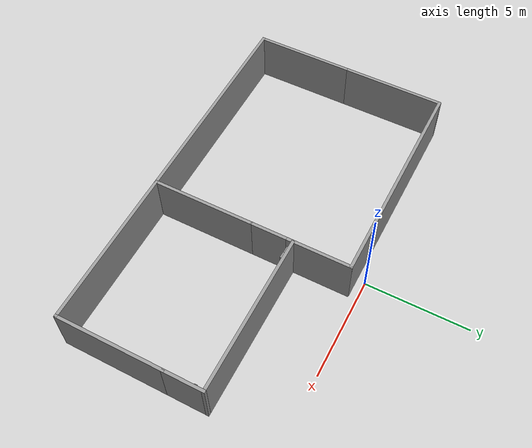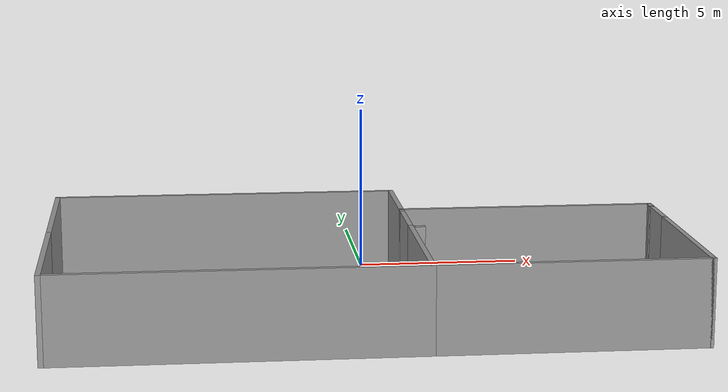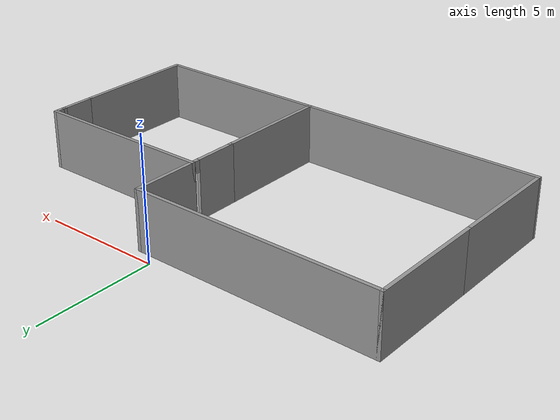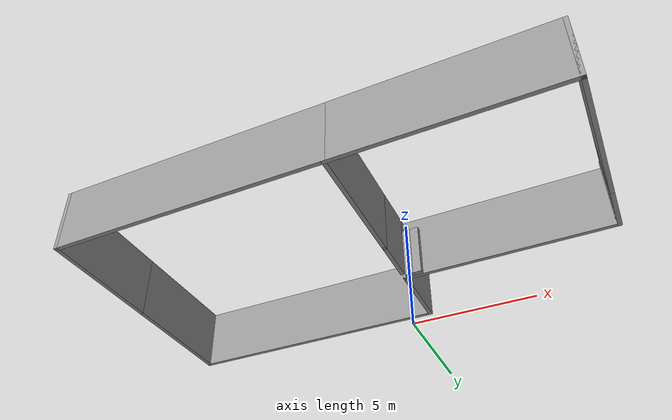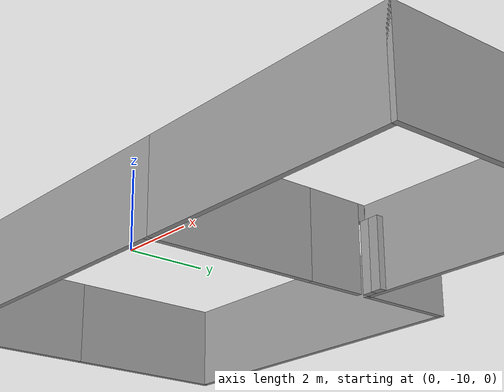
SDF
<?xml version='1.0'?>
<sdf version='1.6'>
  <model name='mfja'>
    <pose frame=''>-0.485 -5.1275 0 0 -0 0</pose>
    <link name='Door_1'>
      <collision name='Door_1_Collision'>
        <geometry>
          <box>
            <size>0.32 0.2 2</size>
          </box>
        </geometry>
        <pose frame=''>0 0 1 0 -0 0</pose>
      </collision>
      <visual name='Door_1_Visual'>
        <pose frame=''>0 0 1 0 -0 0</pose>
        <geometry>
          <box>
            <size>0.32 0.2 2</size>
          </box>
        </geometry>
        <material>
          <script>
            <uri>file://media/materials/scripts/gazebo.material</uri>
            <name>Gazebo/Grey</name>
          </script>
        </material>
      </visual>
      <pose frame=''>1.61 1.7375 0 0 -0 0</pose>
    </link>
    <link name='Door_3'>
      <collision name='Door_3_Collision'>
        <geometry>
          <box>
            <size>0.324939 0.2 2</size>
          </box>
        </geometry>
        <pose frame=''>0 0 1 0 -0 0</pose>
      </collision>
      <visual name='Door_3_Visual'>
        <pose frame=''>0 0 1 0 -0 0</pose>
        <geometry>
          <box>
            <size>0.324939 0.2 2</size>
          </box>
        </geometry>
        <material>
          <script>
            <uri>file://media/materials/scripts/gazebo.material</uri>
            <name>Gazebo/Grey</name>
          </script>
        </material>
      </visual>
      <pose frame=''>1.91897 1.72269 0 0 -0 -0.043705</pose>
    </link>
    <link name='Wall_49'>
      <collision name='Wall_49_Collision'>
        <geometry>
          <box>
            <size>5 0.15 2.5</size>
          </box>
        </geometry>
        <pose frame=''>0 0 1.25 0 -0 0</pose>
      </collision>
      <visual name='Wall_49_Visual'>
        <pose frame=''>0 0 1.25 0 -0 0</pose>
        <geometry>
          <box>
            <size>5 0.15 2.5</size>
          </box>
        </geometry>
        <material>
          <script>
            <uri>file://media/materials/scripts/gazebo.material</uri>
            <name>Gazebo/Grey</name>
          </script>
          <ambient>1 1 1 1</ambient>
        </material>
        <meta>
          <layer>0</layer>
        </meta>
      </visual>
      <pose frame=''>-8.975 -2.6275 0 0 -0 1.5708</pose>
    </link>
    <link name='Wall_51'>
      <collision name='Wall_51_Collision'>
        <geometry>
          <box>
            <size>5 0.15 2.5</size>
          </box>
        </geometry>
        <pose frame=''>0 0 1.25 0 -0 0</pose>
      </collision>
      <visual name='Wall_51_Visual'>
        <pose frame=''>0 0 1.25 0 -0 0</pose>
        <geometry>
          <box>
            <size>5 0.15 2.5</size>
          </box>
        </geometry>
        <material>
          <script>
            <uri>file://media/materials/scripts/gazebo.material</uri>
            <name>Gazebo/Grey</name>
          </script>
          <ambient>1 1 1 1</ambient>
        </material>
        <meta>
          <layer>0</layer>
        </meta>
      </visual>
      <pose frame=''>-8.975 2.2225 0 0 -0 1.5708</pose>
    </link>
    <link name='Wall_53'>
      <collision name='Wall_53_Collision'>
        <geometry>
          <box>
            <size>10.5 0.15 2.5</size>
          </box>
        </geometry>
        <pose frame=''>0 0 1.25 0 -0 0</pose>
      </collision>
      <visual name='Wall_53_Visual'>
        <pose frame=''>0 0 1.25 0 -0 0</pose>
        <geometry>
          <box>
            <size>10.5 0.15 2.5</size>
          </box>
        </geometry>
        <material>
          <script>
            <uri>file://media/materials/scripts/gazebo.material</uri>
            <name>Gazebo/Grey</name>
          </script>
          <ambient>1 1 1 1</ambient>
        </material>
        <meta>
          <layer>0</layer>
        </meta>
      </visual>
      <pose frame=''>-3.8 4.6475 0 0 -0 0</pose>
    </link>
    <link name='Wall_55'>
      <pose frame=''>1.375 2.2225 0 0 -0 -1.5708</pose>
      <visual name='Wall_55_Visual_0'>
        <pose frame=''>-1.045 0 1.25 0 -0 0</pose>
        <geometry>
          <box>
            <size>2.91 0.15 2.5</size>
          </box>
        </geometry>
        <material>
          <script>
            <uri>file://media/materials/scripts/gazebo.material</uri>
            <name>Gazebo/Grey</name>
          </script>
          <ambient>1 1 1 1</ambient>
        </material>
        <meta>
          <layer>0</layer>
        </meta>
      </visual>
      <collision name='Wall_55_Collision_0'>
        <geometry>
          <box>
            <size>2.91 0.15 2.5</size>
          </box>
        </geometry>
        <pose frame=''>-1.045 0 1.25 0 -0 0</pose>
      </collision>
      <visual name='Wall_55_Visual_1'>
        <pose frame=''>1.57 0 1.25 0 -0 0</pose>
        <geometry>
          <box>
            <size>1.86 0.15 2.5</size>
          </box>
        </geometry>
        <material>
          <script>
            <uri>file://media/materials/scripts/gazebo.material</uri>
            <name>Gazebo/Grey</name>
          </script>
          <ambient>1 1 1 1</ambient>
        </material>
        <meta>
          <layer>0</layer>
        </meta>
      </visual>
      <collision name='Wall_55_Collision_1'>
        <geometry>
          <box>
            <size>1.86 0.15 2.5</size>
          </box>
        </geometry>
        <pose frame=''>1.57 0 1.25 0 -0 0</pose>
      </collision>
      <visual name='Wall_55_Visual_2'>
        <pose frame=''>0.525 0 2.25 0 -0 0</pose>
        <geometry>
          <box>
            <size>0.23 0.15 0.5</size>
          </box>
        </geometry>
        <material>
          <script>
            <uri>file://media/materials/scripts/gazebo.material</uri>
            <name>Gazebo/Grey</name>
          </script>
          <ambient>1 1 1 1</ambient>
        </material>
        <meta>
          <layer>0</layer>
        </meta>
      </visual>
      <collision name='Wall_55_Collision_2'>
        <geometry>
          <box>
            <size>0.23 0.15 0.5</size>
          </box>
        </geometry>
        <pose frame=''>0.525 0 2.25 0 -0 0</pose>
      </collision>
    </link>
    <link name='Wall_57'>
      <collision name='Wall_57_Collision'>
        <geometry>
          <box>
            <size>0.15 0.15 2.5</size>
          </box>
        </geometry>
        <pose frame=''>0 0 1.25 0 -0 0</pose>
      </collision>
      <visual name='Wall_57_Visual'>
        <pose frame=''>0 0 1.25 0 -0 0</pose>
        <geometry>
          <box>
            <size>0.15 0.15 2.5</size>
          </box>
        </geometry>
        <material>
          <script>
            <uri>file://media/materials/scripts/gazebo.material</uri>
            <name>Gazebo/Grey</name>
          </script>
          <ambient>1 1 1 1</ambient>
        </material>
        <meta>
          <layer>0</layer>
        </meta>
      </visual>
      <pose frame=''>1.375 -0.2025 0 0 -0 0</pose>
    </link>
    <link name='Wall_58'>
      <collision name='Wall_58_Collision'>
        <geometry>
          <box>
            <size>0.15 0.15 2.5</size>
          </box>
        </geometry>
        <pose frame=''>0 0 1.25 0 -0 0</pose>
      </collision>
      <visual name='Wall_58_Visual'>
        <pose frame=''>0 0 1.25 0 -0 0</pose>
        <geometry>
          <box>
            <size>0.15 0.15 2.5</size>
          </box>
        </geometry>
        <material>
          <script>
            <uri>file://media/materials/scripts/gazebo.material</uri>
            <name>Gazebo/Grey</name>
          </script>
          <ambient>1 1 1 1</ambient>
        </material>
        <meta>
          <layer>0</layer>
        </meta>
      </visual>
      <pose frame=''>1.375 -0.2025 0 0 -0 0</pose>
    </link>
    <link name='Wall_59'>
      <collision name='Wall_59_Collision'>
        <geometry>
          <box>
            <size>0.15 0.15 2.5</size>
          </box>
        </geometry>
        <pose frame=''>0 0 1.25 0 -0 0</pose>
      </collision>
      <visual name='Wall_59_Visual'>
        <pose frame=''>0 0 1.25 0 -0 0</pose>
        <geometry>
          <box>
            <size>0.15 0.15 2.5</size>
          </box>
        </geometry>
        <material>
          <script>
            <uri>file://media/materials/scripts/gazebo.material</uri>
            <name>Gazebo/Grey</name>
          </script>
          <ambient>1 1 1 1</ambient>
        </material>
        <meta>
          <layer>0</layer>
        </meta>
      </visual>
      <pose frame=''>1.375 -0.2025 0 0 -0 0</pose>
    </link>
    <link name='Wall_61'>
      <collision name='Wall_61_Collision'>
        <geometry>
          <box>
            <size>5 0.15 2.5</size>
          </box>
        </geometry>
        <pose frame=''>0 0 1.25 0 -0 0</pose>
      </collision>
      <visual name='Wall_61_Visual'>
        <pose frame=''>0 0 1.25 0 -0 0</pose>
        <geometry>
          <box>
            <size>5 0.15 2.5</size>
          </box>
        </geometry>
        <material>
          <script>
            <uri>file://media/materials/scripts/gazebo.material</uri>
            <name>Gazebo/Grey</name>
          </script>
          <ambient>1 1 1 1</ambient>
        </material>
        <meta>
          <layer>0</layer>
        </meta>
      </visual>
      <pose frame=''>1.375 -2.6275 0 0 -0 -1.5708</pose>
    </link>
    <link name='Wall_62'>
      <collision name='Wall_62_Collision'>
        <geometry>
          <box>
            <size>10.5 0.15 2.5</size>
          </box>
        </geometry>
        <pose frame=''>0 0 1.25 0 -0 0</pose>
      </collision>
      <visual name='Wall_62_Visual'>
        <pose frame=''>0 0 1.25 0 -0 0</pose>
        <geometry>
          <box>
            <size>10.5 0.15 2.5</size>
          </box>
        </geometry>
        <material>
          <script>
            <uri>file://media/materials/scripts/gazebo.material</uri>
            <name>Gazebo/Grey</name>
          </script>
          <ambient>1 1 1 1</ambient>
        </material>
        <meta>
          <layer>0</layer>
        </meta>
      </visual>
      <pose frame=''>-3.8 -5.0525 0 0 -0 3.14159</pose>
    </link>
    <link name='Wall_64'>
      <collision name='Wall_64_Collision'>
        <geometry>
          <box>
            <size>0.15 0.15 2.5</size>
          </box>
        </geometry>
        <pose frame=''>0 0 1.25 0 -0 0</pose>
      </collision>
      <visual name='Wall_64_Visual'>
        <pose frame=''>0 0 1.25 0 -0 0</pose>
        <geometry>
          <box>
            <size>0.15 0.15 2.5</size>
          </box>
        </geometry>
        <material>
          <script>
            <uri>file://media/materials/scripts/gazebo.material</uri>
            <name>Gazebo/Grey</name>
          </script>
          <ambient>1 1 1 1</ambient>
        </material>
        <meta>
          <layer>0</layer>
        </meta>
      </visual>
      <pose frame=''>1.375 -5.0525 0 0 -0 0</pose>
    </link>
    <link name='Wall_65'>
      <collision name='Wall_65_Collision'>
        <geometry>
          <box>
            <size>0.15 0.15 2.5</size>
          </box>
        </geometry>
        <pose frame=''>0 0 1.25 0 -0 0</pose>
      </collision>
      <visual name='Wall_65_Visual'>
        <pose frame=''>0 0 1.25 0 -0 0</pose>
        <geometry>
          <box>
            <size>0.15 0.15 2.5</size>
          </box>
        </geometry>
        <material>
          <script>
            <uri>file://media/materials/scripts/gazebo.material</uri>
            <name>Gazebo/Grey</name>
          </script>
          <ambient>1 1 1 1</ambient>
        </material>
        <meta>
          <layer>0</layer>
        </meta>
      </visual>
      <pose frame=''>1.375 -5.0525 0 0 -0 0</pose>
    </link>
    <link name='Wall_66'>
      <collision name='Wall_66_Collision'>
        <geometry>
          <box>
            <size>0.15 0.15 2.5</size>
          </box>
        </geometry>
        <pose frame=''>0 0 1.25 0 -0 0</pose>
      </collision>
      <visual name='Wall_66_Visual'>
        <pose frame=''>0 0 1.25 0 -0 0</pose>
        <geometry>
          <box>
            <size>0.15 0.15 2.5</size>
          </box>
        </geometry>
        <material>
          <script>
            <uri>file://media/materials/scripts/gazebo.material</uri>
            <name>Gazebo/Grey</name>
          </script>
          <ambient>1 1 1 1</ambient>
        </material>
        <meta>
          <layer>0</layer>
        </meta>
      </visual>
      <pose frame=''>1.375 -5.0525 0 0 -0 0</pose>
    </link>
    <link name='Wall_67'>
      <collision name='Wall_67_Collision'>
        <geometry>
          <box>
            <size>0.15 0.15 2.5</size>
          </box>
        </geometry>
        <pose frame=''>0 0 1.25 0 -0 0</pose>
      </collision>
      <visual name='Wall_67_Visual'>
        <pose frame=''>0 0 1.25 0 -0 0</pose>
        <geometry>
          <box>
            <size>0.15 0.15 2.5</size>
          </box>
        </geometry>
        <material>
          <script>
            <uri>file://media/materials/scripts/gazebo.material</uri>
            <name>Gazebo/Grey</name>
          </script>
          <ambient>1 1 1 1</ambient>
        </material>
        <meta>
          <layer>0</layer>
        </meta>
      </visual>
      <pose frame=''>1.375 -5.0525 0 0 -0 0</pose>
    </link>
    <link name='Wall_68'>
      <collision name='Wall_68_Collision'>
        <geometry>
          <box>
            <size>0.15 0.15 2.5</size>
          </box>
        </geometry>
        <pose frame=''>0 0 1.25 0 -0 0</pose>
      </collision>
      <visual name='Wall_68_Visual'>
        <pose frame=''>0 0 1.25 0 -0 0</pose>
        <geometry>
          <box>
            <size>0.15 0.15 2.5</size>
          </box>
        </geometry>
        <material>
          <script>
            <uri>file://media/materials/scripts/gazebo.material</uri>
            <name>Gazebo/Grey</name>
          </script>
          <ambient>1 1 1 1</ambient>
        </material>
        <meta>
          <layer>0</layer>
        </meta>
      </visual>
      <pose frame=''>1.375 -5.0525 0 0 -0 0</pose>
    </link>
    <link name='Wall_70'>
      <collision name='Wall_70_Collision'>
        <geometry>
          <box>
            <size>7.75 0.15 2.5</size>
          </box>
        </geometry>
        <pose frame=''>0 0 1.25 0 -0 0</pose>
      </collision>
      <visual name='Wall_70_Visual'>
        <pose frame=''>0 0 1.25 0 -0 0</pose>
        <geometry>
          <box>
            <size>7.75 0.15 2.5</size>
          </box>
        </geometry>
        <material>
          <script>
            <uri>file://media/materials/scripts/gazebo.material</uri>
            <name>Gazebo/Grey</name>
          </script>
          <ambient>1 1 1 1</ambient>
        </material>
        <meta>
          <layer>0</layer>
        </meta>
      </visual>
      <pose frame=''>5.175 -5.0525 0 0 -0 0</pose>
    </link>
    <link name='Wall_71'>
      <collision name='Wall_71_Collision'>
        <geometry>
          <box>
            <size>0.15 0.15 2.5</size>
          </box>
        </geometry>
        <pose frame=''>0 0 1.25 0 -0 0</pose>
      </collision>
      <visual name='Wall_71_Visual'>
        <pose frame=''>0 0 1.25 0 -0 0</pose>
        <geometry>
          <box>
            <size>0.15 0.15 2.5</size>
          </box>
        </geometry>
        <material>
          <script>
            <uri>file://media/materials/scripts/gazebo.material</uri>
            <name>Gazebo/Grey</name>
          </script>
          <ambient>1 1 1 1</ambient>
        </material>
        <meta>
          <layer>0</layer>
        </meta>
      </visual>
      <pose frame=''>8.975 -5.0525 0 0 -0 0</pose>
    </link>
    <link name='Wall_73'>
      <collision name='Wall_73_Collision'>
        <geometry>
          <box>
            <size>5.25 0.15 2.5</size>
          </box>
        </geometry>
        <pose frame=''>0 0 1.25 0 -0 0</pose>
      </collision>
      <visual name='Wall_73_Visual'>
        <pose frame=''>0 0 1.25 0 -0 0</pose>
        <geometry>
          <box>
            <size>5.25 0.15 2.5</size>
          </box>
        </geometry>
        <material>
          <script>
            <uri>file://media/materials/scripts/gazebo.material</uri>
            <name>Gazebo/Grey</name>
          </script>
          <ambient>1 1 1 1</ambient>
        </material>
        <meta>
          <layer>0</layer>
        </meta>
      </visual>
      <pose frame=''>8.975 -2.5025 0 0 -0 1.5708</pose>
    </link>
    <link name='Wall_77'>
      <collision name='Wall_77_Collision'>
        <geometry>
          <box>
            <size>0.15 0.15 2.5</size>
          </box>
        </geometry>
        <pose frame=''>0 0 1.25 0 -0 0</pose>
      </collision>
      <visual name='Wall_77_Visual'>
        <pose frame=''>0 0 1.25 0 -0 0</pose>
        <geometry>
          <box>
            <size>0.15 0.15 2.5</size>
          </box>
        </geometry>
        <material>
          <script>
            <uri>file://media/materials/scripts/gazebo.material</uri>
            <name>Gazebo/Grey</name>
          </script>
          <ambient>1 1 1 1</ambient>
        </material>
        <meta>
          <layer>0</layer>
        </meta>
      </visual>
      <pose frame=''>8.94912 1.49409 0 0 -0 0</pose>
    </link>
    <link name='Wall_78'>
      <collision name='Wall_78_Collision'>
        <geometry>
          <box>
            <size>0.15 0.15 2.5</size>
          </box>
        </geometry>
        <pose frame=''>0 0 1.25 0 -0 0</pose>
      </collision>
      <visual name='Wall_78_Visual'>
        <pose frame=''>0 0 1.25 0 -0 0</pose>
        <geometry>
          <box>
            <size>0.15 0.15 2.5</size>
          </box>
        </geometry>
        <material>
          <script>
            <uri>file://media/materials/scripts/gazebo.material</uri>
            <name>Gazebo/Grey</name>
          </script>
          <ambient>1 1 1 1</ambient>
        </material>
        <meta>
          <layer>0</layer>
        </meta>
      </visual>
      <pose frame=''>8.94912 1.49409 0 0 -0 0</pose>
    </link>
    <link name='Wall_80'>
      <collision name='Wall_80_Collision'>
        <geometry>
          <box>
            <size>2 0.15 2.5</size>
          </box>
        </geometry>
        <pose frame=''>0 0 1.25 0 -0 0</pose>
      </collision>
      <visual name='Wall_80_Visual'>
        <pose frame=''>0 0 1.25 0 -0 0</pose>
        <geometry>
          <box>
            <size>2 0.15 2.5</size>
          </box>
        </geometry>
        <material>
          <script>
            <uri>file://media/materials/scripts/gazebo.material</uri>
            <name>Gazebo/Grey</name>
          </script>
          <ambient>1 1 1 1</ambient>
        </material>
        <meta>
          <layer>0</layer>
        </meta>
      </visual>
      <pose frame=''>8.975 0.9725 0 0 -0 1.5708</pose>
    </link>
    <link name='Wall_81'>
      <collision name='Wall_81_Collision'>
        <geometry>
          <box>
            <size>7.75 0.15 2.5</size>
          </box>
        </geometry>
        <pose frame=''>0 0 1.25 0 -0 0</pose>
      </collision>
      <visual name='Wall_81_Visual'>
        <pose frame=''>0 0 1.25 0 -0 0</pose>
        <geometry>
          <box>
            <size>7.75 0.15 2.5</size>
          </box>
        </geometry>
        <material>
          <script>
            <uri>file://media/materials/scripts/gazebo.material</uri>
            <name>Gazebo/Grey</name>
          </script>
          <ambient>1 1 1 1</ambient>
        </material>
        <meta>
          <layer>0</layer>
        </meta>
      </visual>
      <pose frame=''>5.175 1.8975 0 0 -0 3.14159</pose>
    </link>
    <static>1</static>
  </model>
</sdf>
